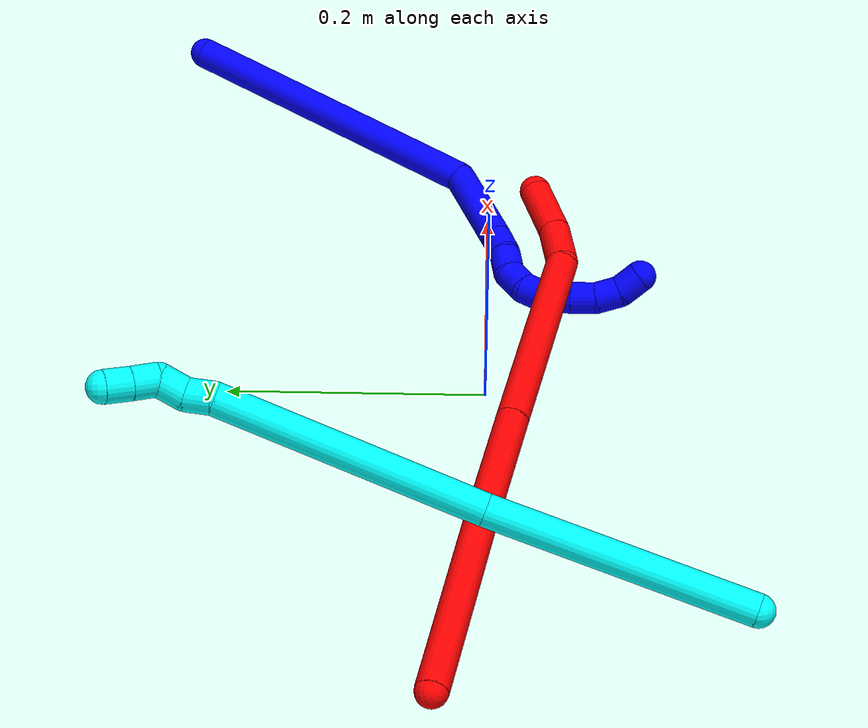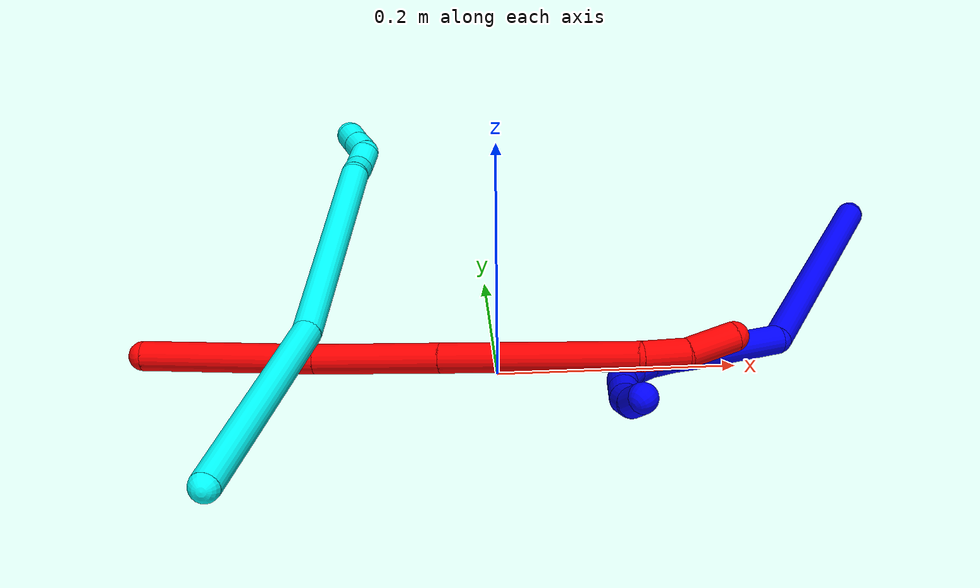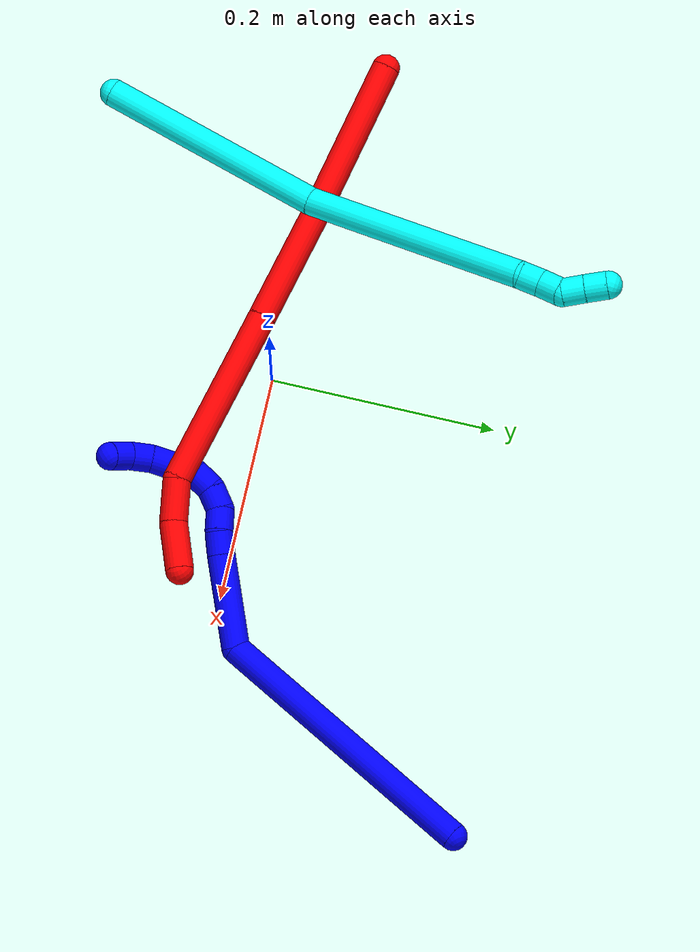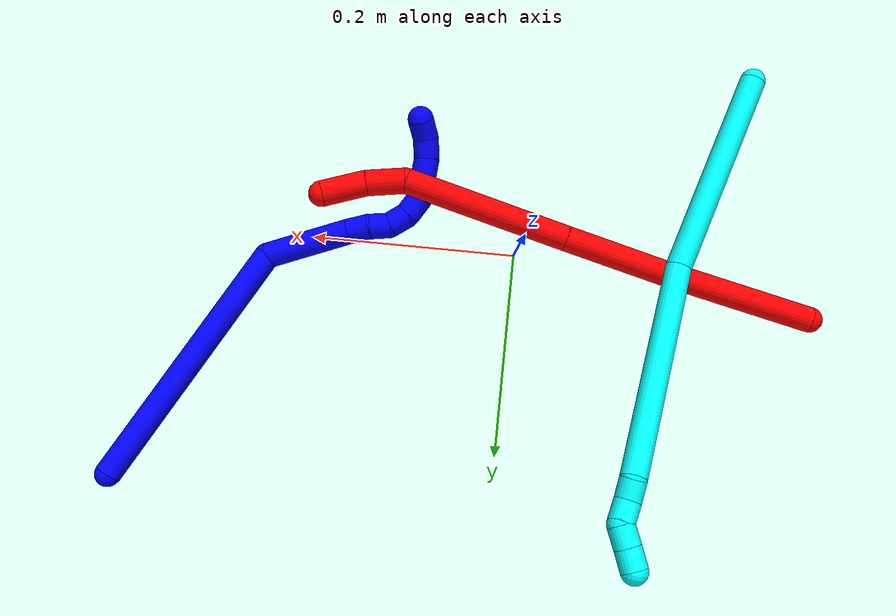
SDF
<sdf version="1.7">
 <world name="default">
  <plugin name="TubeGeneratorPlugin" filename="libtube_generator_plugin.so"/>
  <model name="photoneo_s_sensor">
   <static>1</static>
   <pose>0 0 2 1.57079 1.57079 3.14159</pose>
   <link name="link">
    <inertial><mass>0.1</mass></inertial>
    <sensor name="sensor" type="depth">
     <update_rate>30</update_rate>
     <camera>
      <horizontal_fov>1.22</horizontal_fov>
      <image><width>1920</width><height>1200</height><format>B8G8R8</format></image>
      <clip><near>0.1</near><far>4</far></clip>
      <depth_camera><output>points</output></depth_camera>
     </camera>
     <plugin name="camera_plugin" filename="libgazebo_ros_depth_camera.so">
      <baseline>0.2</baseline>
      <alwaysOn>1</alwaysOn>
      <updateRate>0.0</updateRate>
      <cameraName>camera_ir</cameraName>
      <imageTopicName>/camera/color/image_raw</imageTopicName>
      <cameraInfoTopicName>/camera/color/camera_info</cameraInfoTopicName>
      <depthImageTopicName>/camera/depth/image_raw</depthImageTopicName>
      <depthImageCameraInfoTopicName>/camera/depth/camera_info</depthImageCameraInfoTopicName>
      <pointCloudTopicName>/camera/depth/points</pointCloudTopicName>
      <frameName>fr_optical</frameName>
      <pointCloudCutoff>0.1</pointCloudCutoff>
      <pointCloudCutoffMax>2.0</pointCloudCutoffMax>
      <distortionK1>0</distortionK1>
      <distortionK2>0</distortionK2>
      <distortionK3>0</distortionK3>
      <distortionT1>0</distortionT1>
      <distortionT2>0</distortionT2>
      <CxPrime>0</CxPrime>
      <Cx>0</Cx>
      <Cy>0</Cy>
      <focalLength>0</focalLength>
      <hackBaseline>0</hackBaseline>
     </plugin>
    </sensor>
   </link>
  </model>
  <gravity>0 0 -9.8</gravity>
  <magnetic_field>6e-06 2.3e-05 -4.2e-05</magnetic_field>
  <atmosphere type="adiabatic"/>
  <physics name="default_physics" default="0" type="ode">
   <max_step_size>0.003</max_step_size>
   <real_time_factor>1</real_time_factor>
   <real_time_update_rate>1000</real_time_update_rate>
   <max_contacts>10000</max_contacts>
   <ode>
    <solver>
     <type>quick</type>
     <iters>100</iters>
     <sor>1.3</sor>
     <use_dynamic_moi_rescaling>0</use_dynamic_moi_rescaling>
    </solver>
    <constraints>
     <contact_max_correcting_vel>0</contact_max_correcting_vel>
     <contact_surface_layer>0.001</contact_surface_layer>
     <cfm>0</cfm>
     <erp>0.2</erp>
    </constraints>
   </ode>
  </physics>
  <scene><ambient>0.4 0.4 0.4 1</ambient><background>0.7 0.7 0.7 1</background><shadows>0</shadows></scene>
  <audio><device>default</device></audio>
  <spherical_coordinates>
   <surface_model>EARTH_WGS84</surface_model>
   <latitude_deg>0</latitude_deg>
   <longitude_deg>0</longitude_deg>
   <elevation>0</elevation>
   <heading_deg>0</heading_deg>
  </spherical_coordinates>
  <model name="bin">
   <static>1</static>
   <link name="bottom">
    <collision name="collision-bottom">
     <pose>0 0 -0.01 0 -0 0</pose>
     <geometry><box><size>0.8 0.6 0.02</size></box></geometry>
     <surface>
      <friction><ode><mu>100</mu><mu2>100</mu2></ode></friction>
      <contact><collide_bitmask>65535</collide_bitmask></contact>
     </surface>
    </collision>
   </link>
   <link name="west_wall">
    <collision name="collision-west_wall">
     <pose>-0.41 0 0.1 0 -0 0</pose>
     <geometry><box><size>0.02 0.6 0.2</size></box></geometry>
     <surface>
      <friction><ode><mu>100</mu><mu2>100</mu2></ode></friction>
      <contact><collide_bitmask>65535</collide_bitmask></contact>
     </surface>
    </collision>
   </link>
   <link name="east_wall">
    <collision name="collision-east_wall">
     <pose>0.41 0 0.1 0 -0 0</pose>
     <geometry><box><size>0.02 0.6 0.2</size></box></geometry>
     <surface>
      <friction><ode><mu>100</mu><mu2>100</mu2></ode></friction>
      <contact><collide_bitmask>65535</collide_bitmask></contact>
     </surface>
    </collision>
   </link>
   <link name="south_wall">
    <collision name="collision-south_wall">
     <pose>0 -0.31 0.1 0 -0 0</pose>
     <geometry><box><size>0.8 0.02 0.2</size></box></geometry>
     <surface>
      <friction><ode><mu>100</mu><mu2>100</mu2></ode></friction>
      <contact><collide_bitmask>65535</collide_bitmask></contact>
     </surface>
    </collision>
   </link>
   <link name="north_wall">
    <collision name="collision-north_wall">
     <pose>0 0.31 0.1 0 -0 0</pose>
     <geometry><box><size>0.8 0.02 0.2</size></box></geometry>
     <surface>
      <friction><ode><mu>100</mu><mu2>100</mu2></ode></friction>
      <contact><collide_bitmask>65535</collide_bitmask></contact>
     </surface>
    </collision>
   </link>
  </model>
  <model name="1">
   <static>0</static>
   <link name="1">
    <collision name="collision-cylinder-e_1_1_4">
     <pose>0.010306 -0.044411 -0.119067 2.78458 0.080923 0.441445</pose>
     <geometry><cylinder><radius>0.0125</radius><length>0.254993</length></cylinder></geometry>
     <surface>
      <friction><ode><mu>1.16</mu><mu2>1.16</mu2><slip1>0</slip1><slip2>0</slip2></ode></friction>
      <contact><ode><kp>1e+06</kp><kd>1</kd><max_vel>0</max_vel><min_depth>0.001</min_depth></ode></contact>
     </surface>
    </collision>
    <visual name="visual-cylinder-e_1_1_4">
     <pose>0.010306 -0.044411 -0.119067 2.78458 0.080923 0.441445</pose>
     <geometry><cylinder><radius>0.0125</radius><length>0.254993</length></cylinder></geometry>
     <material><ambient>0 0 1 1</ambient></material>
    </visual>
    <collision name="collision-cylinder-e_2_4_5">
     <pose>0.003591 -0.083265 -0.275561 -2.99419 -0.422722 2.47874</pose>
     <geometry><cylinder><radius>0.0125</radius><length>0.08298</length></cylinder></geometry>
     <surface>
      <friction><ode><mu>1.16</mu><mu2>1.16</mu2><slip1>0</slip1><slip2>0</slip2></ode></friction>
      <contact><ode><kp>1e+06</kp><kd>1</kd><max_vel>0</max_vel><min_depth>0.001</min_depth></ode></contact>
     </surface>
    </collision>
    <visual name="visual-cylinder-e_2_4_5">
     <pose>0.003591 -0.083265 -0.275561 -2.99419 -0.422722 2.47874</pose>
     <geometry><cylinder><radius>0.0125</radius><length>0.08298</length></cylinder></geometry>
     <material><ambient>0 0 1 1</ambient></material>
    </visual>
    <collision name="collision-cylinder-e_3_5_6">
     <pose>-0.018146 -0.075979 -0.322222 -2.95655 -0.465268 2.39504</pose>
     <geometry><cylinder><radius>0.0125</radius><length>0.021023</length></cylinder></geometry>
     <surface>
      <friction><ode><mu>1.16</mu><mu2>1.16</mu2><slip1>0</slip1><slip2>0</slip2></ode></friction>
      <contact><ode><kp>1e+06</kp><kd>1</kd><max_vel>0</max_vel><min_depth>0.001</min_depth></ode></contact>
     </surface>
    </collision>
    <visual name="visual-cylinder-e_3_5_6">
     <pose>-0.018146 -0.075979 -0.322222 -2.95655 -0.465268 2.39504</pose>
     <geometry><cylinder><radius>0.0125</radius><length>0.021023</length></cylinder></geometry>
     <material><ambient>0 0 1 1</ambient></material>
    </visual>
    <collision name="collision-cylinder-e_4_6_7">
     <pose>-0.026519 -0.070325 -0.340065 -2.71381 -0.368827 1.41912</pose>
     <geometry><cylinder><radius>0.0125</radius><length>0.020288</length></cylinder></geometry>
     <surface>
      <friction><ode><mu>1.16</mu><mu2>1.16</mu2><slip1>0</slip1><slip2>0</slip2></ode></friction>
      <contact><ode><kp>1e+06</kp><kd>1</kd><max_vel>0</max_vel><min_depth>0.001</min_depth></ode></contact>
     </surface>
    </collision>
    <visual name="visual-cylinder-e_4_6_7">
     <pose>-0.026519 -0.070325 -0.340065 -2.71381 -0.368827 1.41912</pose>
     <geometry><cylinder><radius>0.0125</radius><length>0.020288</length></cylinder></geometry>
     <material><ambient>0 0 1 1</ambient></material>
    </visual>
    <collision name="collision-cylinder-e_5_7_8">
     <pose>-0.032666 -0.066892 -0.358641 3.09225 -0.244465 -2.74515</pose>
     <geometry><cylinder><radius>0.0125</radius><length>0.020568</length></cylinder></geometry>
     <surface>
      <friction><ode><mu>1.16</mu><mu2>1.16</mu2><slip1>0</slip1><slip2>0</slip2></ode></friction>
      <contact><ode><kp>1e+06</kp><kd>1</kd><max_vel>0</max_vel><min_depth>0.001</min_depth></ode></contact>
     </surface>
    </collision>
    <visual name="visual-cylinder-e_5_7_8">
     <pose>-0.032666 -0.066892 -0.358641 3.09225 -0.244465 -2.74515</pose>
     <geometry><cylinder><radius>0.0125</radius><length>0.020568</length></cylinder></geometry>
     <material><ambient>0 0 1 1</ambient></material>
    </visual>
    <collision name="collision-cylinder-e_6_8_9">
     <pose>-0.035687 -0.071207 -0.377877 2.75044 -0.053059 -0.266306</pose>
     <geometry><cylinder><radius>0.0125</radius><length>0.020083</length></cylinder></geometry>
     <surface>
      <friction><ode><mu>1.16</mu><mu2>1.16</mu2><slip1>0</slip1><slip2>0</slip2></ode></friction>
      <contact><ode><kp>1e+06</kp><kd>1</kd><max_vel>0</max_vel><min_depth>0.001</min_depth></ode></contact>
     </surface>
    </collision>
    <visual name="visual-cylinder-e_6_8_9">
     <pose>-0.035687 -0.071207 -0.377877 2.75044 -0.053059 -0.266306</pose>
     <geometry><cylinder><radius>0.0125</radius><length>0.020083</length></cylinder></geometry>
     <material><ambient>0 0 1 1</ambient></material>
    </visual>
    <collision name="collision-cylinder-e_7_9_10">
     <pose>-0.034672 -0.082276 -0.393898 2.32088 0.155065 0.353417</pose>
     <geometry><cylinder><radius>0.0125</radius><length>0.020049</length></cylinder></geometry>
     <surface>
      <friction><ode><mu>1.16</mu><mu2>1.16</mu2><slip1>0</slip1><slip2>0</slip2></ode></friction>
      <contact><ode><kp>1e+06</kp><kd>1</kd><max_vel>0</max_vel><min_depth>0.001</min_depth></ode></contact>
     </surface>
    </collision>
    <visual name="visual-cylinder-e_7_9_10">
     <pose>-0.034672 -0.082276 -0.393898 2.32088 0.155065 0.353417</pose>
     <geometry><cylinder><radius>0.0125</radius><length>0.020049</length></cylinder></geometry>
     <material><ambient>0 0 1 1</ambient></material>
    </visual>
    <collision name="collision-cylinder-e_8_10_11">
     <pose>-0.031592 -0.096741 -0.407401 2.32272 0.153754 0.351342</pose>
     <geometry><cylinder><radius>0.0125</radius><length>0.020002</length></cylinder></geometry>
     <surface>
      <friction><ode><mu>1.16</mu><mu2>1.16</mu2><slip1>0</slip1><slip2>0</slip2></ode></friction>
      <contact><ode><kp>1e+06</kp><kd>1</kd><max_vel>0</max_vel><min_depth>0.001</min_depth></ode></contact>
     </surface>
    </collision>
    <visual name="visual-cylinder-e_8_10_11">
     <pose>-0.031592 -0.096741 -0.407401 2.32272 0.153754 0.351342</pose>
     <geometry><cylinder><radius>0.0125</radius><length>0.020002</length></cylinder></geometry>
     <material><ambient>0 0 1 1</ambient></material>
    </visual>
    <collision name="collision-cylinder-e_9_11_12">
     <pose>-0.028955 -0.112843 -0.418621 2.03699 0.110665 0.179273</pose>
     <geometry><cylinder><radius>0.0125</radius><length>0.020012</length></cylinder></geometry>
     <surface>
      <friction><ode><mu>1.16</mu><mu2>1.16</mu2><slip1>0</slip1><slip2>0</slip2></ode></friction>
      <contact><ode><kp>1e+06</kp><kd>1</kd><max_vel>0</max_vel><min_depth>0.001</min_depth></ode></contact>
     </surface>
    </collision>
    <visual name="visual-cylinder-e_9_11_12">
     <pose>-0.028955 -0.112843 -0.418621 2.03699 0.110665 0.179273</pose>
     <geometry><cylinder><radius>0.0125</radius><length>0.020012</length></cylinder></geometry>
     <material><ambient>0 0 1 1</ambient></material>
    </visual>
    <collision name="collision-cylinder-e_10_12_2">
     <pose>-0.028796 -0.131594 -0.424412 1.7038 -0.094729 -0.108223</pose>
     <geometry><cylinder><radius>0.0125</radius><length>0.020001</length></cylinder></geometry>
     <surface>
      <friction><ode><mu>1.16</mu><mu2>1.16</mu2><slip1>0</slip1><slip2>0</slip2></ode></friction>
      <contact><ode><kp>1e+06</kp><kd>1</kd><max_vel>0</max_vel><min_depth>0.001</min_depth></ode></contact>
     </surface>
    </collision>
    <visual name="visual-cylinder-e_10_12_2">
     <pose>-0.028796 -0.131594 -0.424412 1.7038 -0.094729 -0.108223</pose>
     <geometry><cylinder><radius>0.0125</radius><length>0.020001</length></cylinder></geometry>
     <material><ambient>0 0 1 1</ambient></material>
    </visual>
    <collision name="collision-sphere-2">
     <pose>-0.029742 -0.141462 -0.425732 0 -0 0</pose>
     <geometry><sphere><radius>0.0125</radius></sphere></geometry>
     <surface>
      <friction><ode><mu>1.16</mu><mu2>1.16</mu2><slip1>0</slip1><slip2>0</slip2></ode></friction>
      <contact><ode><kp>1e+06</kp><kd>1</kd><max_vel>0</max_vel><min_depth>0.001</min_depth></ode></contact>
     </surface>
    </collision>
    <visual name="visual-sphere-2">
     <pose>-0.029742 -0.141462 -0.425732 0 -0 0</pose>
     <geometry><sphere><radius>0.0125</radius></sphere></geometry>
     <material><ambient>0 0 1 1</ambient></material>
    </visual>
    <collision name="collision-sphere-12">
     <pose>-0.02785 -0.121727 -0.423092 0 -0 0</pose>
     <geometry><sphere><radius>0.0125</radius></sphere></geometry>
     <surface>
      <friction><ode><mu>1.16</mu><mu2>1.16</mu2><slip1>0</slip1><slip2>0</slip2></ode></friction>
      <contact><ode><kp>1e+06</kp><kd>1</kd><max_vel>0</max_vel><min_depth>0.001</min_depth></ode></contact>
     </surface>
    </collision>
    <visual name="visual-sphere-12">
     <pose>-0.02785 -0.121727 -0.423092 0 -0 0</pose>
     <geometry><sphere><radius>0.0125</radius></sphere></geometry>
     <material><ambient>0 0 1 1</ambient></material>
    </visual>
    <collision name="collision-sphere-11">
     <pose>-0.03006 -0.10396 -0.414151 0 -0 0</pose>
     <geometry><sphere><radius>0.0125</radius></sphere></geometry>
     <surface>
      <friction><ode><mu>1.16</mu><mu2>1.16</mu2><slip1>0</slip1><slip2>0</slip2></ode></friction>
      <contact><ode><kp>1e+06</kp><kd>1</kd><max_vel>0</max_vel><min_depth>0.001</min_depth></ode></contact>
     </surface>
    </collision>
    <visual name="visual-sphere-11">
     <pose>-0.03006 -0.10396 -0.414151 0 -0 0</pose>
     <geometry><sphere><radius>0.0125</radius></sphere></geometry>
     <material><ambient>0 0 1 1</ambient></material>
    </visual>
    <collision name="collision-sphere-10">
     <pose>-0.033123 -0.089523 -0.40065 0 -0 0</pose>
     <geometry><sphere><radius>0.0125</radius></sphere></geometry>
     <surface>
      <friction><ode><mu>1.16</mu><mu2>1.16</mu2><slip1>0</slip1><slip2>0</slip2></ode></friction>
      <contact><ode><kp>1e+06</kp><kd>1</kd><max_vel>0</max_vel><min_depth>0.001</min_depth></ode></contact>
     </surface>
    </collision>
    <visual name="visual-sphere-10">
     <pose>-0.033123 -0.089523 -0.40065 0 -0 0</pose>
     <geometry><sphere><radius>0.0125</radius></sphere></geometry>
     <material><ambient>0 0 1 1</ambient></material>
    </visual>
    <collision name="collision-sphere-9">
     <pose>-0.03622 -0.07503 -0.387147 0 -0 0</pose>
     <geometry><sphere><radius>0.0125</radius></sphere></geometry>
     <surface>
      <friction><ode><mu>1.16</mu><mu2>1.16</mu2><slip1>0</slip1><slip2>0</slip2></ode></friction>
      <contact><ode><kp>1e+06</kp><kd>1</kd><max_vel>0</max_vel><min_depth>0.001</min_depth></ode></contact>
     </surface>
    </collision>
    <visual name="visual-sphere-9">
     <pose>-0.03622 -0.07503 -0.387147 0 -0 0</pose>
     <geometry><sphere><radius>0.0125</radius></sphere></geometry>
     <material><ambient>0 0 1 1</ambient></material>
    </visual>
    <collision name="collision-sphere-4">
     <pose>0.020612 -0.088822 -0.238133 0 -0 0</pose>
     <geometry><sphere><radius>0.0125</radius></sphere></geometry>
     <surface>
      <friction><ode><mu>1.16</mu><mu2>1.16</mu2><slip1>0</slip1><slip2>0</slip2></ode></friction>
      <contact><ode><kp>1e+06</kp><kd>1</kd><max_vel>0</max_vel><min_depth>0.001</min_depth></ode></contact>
     </surface>
    </collision>
    <visual name="visual-sphere-4">
     <pose>0.020612 -0.088822 -0.238133 0 -0 0</pose>
     <geometry><sphere><radius>0.0125</radius></sphere></geometry>
     <material><ambient>0 0 1 1</ambient></material>
    </visual>
    <collision name="collision-sphere-1">
     <geometry><sphere><radius>0.0125</radius></sphere></geometry>
     <surface>
      <friction><ode><mu>1.16</mu><mu2>1.16</mu2><slip1>0</slip1><slip2>0</slip2></ode></friction>
      <contact><ode><kp>1e+06</kp><kd>1</kd><max_vel>0</max_vel><min_depth>0.001</min_depth></ode></contact>
     </surface>
    </collision>
    <visual name="visual-sphere-1">
     <geometry><sphere><radius>0.0125</radius></sphere></geometry>
     <material><ambient>0 0 1 1</ambient></material>
    </visual>
    <collision name="collision-sphere-8">
     <pose>-0.035155 -0.067384 -0.368607 0 -0 0</pose>
     <geometry><sphere><radius>0.0125</radius></sphere></geometry>
     <surface>
      <friction><ode><mu>1.16</mu><mu2>1.16</mu2><slip1>0</slip1><slip2>0</slip2></ode></friction>
      <contact><ode><kp>1e+06</kp><kd>1</kd><max_vel>0</max_vel><min_depth>0.001</min_depth></ode></contact>
     </surface>
    </collision>
    <visual name="visual-sphere-8">
     <pose>-0.035155 -0.067384 -0.368607 0 -0 0</pose>
     <geometry><sphere><radius>0.0125</radius></sphere></geometry>
     <material><ambient>0 0 1 1</ambient></material>
    </visual>
    <collision name="collision-sphere-5">
     <pose>-0.01343 -0.077708 -0.312988 0 -0 0</pose>
     <geometry><sphere><radius>0.0125</radius></sphere></geometry>
     <surface>
      <friction><ode><mu>1.16</mu><mu2>1.16</mu2><slip1>0</slip1><slip2>0</slip2></ode></friction>
      <contact><ode><kp>1e+06</kp><kd>1</kd><max_vel>0</max_vel><min_depth>0.001</min_depth></ode></contact>
     </surface>
    </collision>
    <visual name="visual-sphere-5">
     <pose>-0.01343 -0.077708 -0.312988 0 -0 0</pose>
     <geometry><sphere><radius>0.0125</radius></sphere></geometry>
     <material><ambient>0 0 1 1</ambient></material>
    </visual>
    <collision name="collision-sphere-6">
     <pose>-0.022862 -0.074251 -0.331456 0 -0 0</pose>
     <geometry><sphere><radius>0.0125</radius></sphere></geometry>
     <surface>
      <friction><ode><mu>1.16</mu><mu2>1.16</mu2><slip1>0</slip1><slip2>0</slip2></ode></friction>
      <contact><ode><kp>1e+06</kp><kd>1</kd><max_vel>0</max_vel><min_depth>0.001</min_depth></ode></contact>
     </surface>
    </collision>
    <visual name="visual-sphere-6">
     <pose>-0.022862 -0.074251 -0.331456 0 -0 0</pose>
     <geometry><sphere><radius>0.0125</radius></sphere></geometry>
     <material><ambient>0 0 1 1</ambient></material>
    </visual>
    <collision name="collision-sphere-7">
     <pose>-0.030176 -0.0664 -0.348675 0 -0 0</pose>
     <geometry><sphere><radius>0.0125</radius></sphere></geometry>
     <surface>
      <friction><ode><mu>1.16</mu><mu2>1.16</mu2><slip1>0</slip1><slip2>0</slip2></ode></friction>
      <contact><ode><kp>1e+06</kp><kd>1</kd><max_vel>0</max_vel><min_depth>0.001</min_depth></ode></contact>
     </surface>
    </collision>
    <visual name="visual-sphere-7">
     <pose>-0.030176 -0.0664 -0.348675 0 -0 0</pose>
     <geometry><sphere><radius>0.0125</radius></sphere></geometry>
     <material><ambient>0 0 1 1</ambient></material>
    </visual>
    <inertial>
     <pose>-0.003729 -0.065077 -0.229557 0 -0 0</pose>
     <mass>0.5</mass>
     <inertia>
      <ixx>0.001844</ixx>
      <ixy>0</ixy>
      <ixz>0</ixz>
      <iyy>-0.000509</iyy>
      <iyz>0</iyz>
      <izz>0.000359</izz>
     </inertia>
    </inertial>
   </link>
   <pose>0.363314 0.245429 0.043662 -1.114 0.945534 -0.468103</pose>
  </model>
  <model name="2">
   <static>0</static>
   <link name="2">
    <collision name="collision-cylinder-e_1_1_4">
     <pose>0.058648 -0.03575 -0.026803 2.21413 0.91975 1.56113</pose>
     <geometry><cylinder><radius>0.0125</radius><length>0.147458</length></cylinder></geometry>
     <surface>
      <friction><ode><mu>1.16</mu><mu2>1.16</mu2><slip1>0</slip1><slip2>0</slip2></ode></friction>
      <contact><ode><kp>1e+06</kp><kd>1</kd><max_vel>0</max_vel><min_depth>0.001</min_depth></ode></contact>
     </surface>
    </collision>
    <visual name="visual-cylinder-e_1_1_4">
     <pose>0.058648 -0.03575 -0.026803 2.21413 0.91975 1.56113</pose>
     <geometry><cylinder><radius>0.0125</radius><length>0.147458</length></cylinder></geometry>
     <material><ambient>1 0 0 1</ambient></material>
    </visual>
    <collision name="collision-cylinder-e_2_4_5">
     <pose>0.160366 -0.09716 -0.070511 2.15335 0.951087 1.52575</pose>
     <geometry><cylinder><radius>0.0125</radius><length>0.105817</length></cylinder></geometry>
     <surface>
      <friction><ode><mu>1.16</mu><mu2>1.16</mu2><slip1>0</slip1><slip2>0</slip2></ode></friction>
      <contact><ode><kp>1e+06</kp><kd>1</kd><max_vel>0</max_vel><min_depth>0.001</min_depth></ode></contact>
     </surface>
    </collision>
    <visual name="visual-cylinder-e_2_4_5">
     <pose>0.160366 -0.09716 -0.070511 2.15335 0.951087 1.52575</pose>
     <geometry><cylinder><radius>0.0125</radius><length>0.105817</length></cylinder></geometry>
     <material><ambient>1 0 0 1</ambient></material>
    </visual>
    <collision name="collision-cylinder-e_3_5_6">
     <pose>0.270159 -0.163003 -0.113341 2.14375 0.948964 1.5117</pose>
     <geometry><cylinder><radius>0.0125</radius><length>0.164179</length></cylinder></geometry>
     <surface>
      <friction><ode><mu>1.16</mu><mu2>1.16</mu2><slip1>0</slip1><slip2>0</slip2></ode></friction>
      <contact><ode><kp>1e+06</kp><kd>1</kd><max_vel>0</max_vel><min_depth>0.001</min_depth></ode></contact>
     </surface>
    </collision>
    <visual name="visual-cylinder-e_3_5_6">
     <pose>0.270159 -0.163003 -0.113341 2.14375 0.948964 1.5117</pose>
     <geometry><cylinder><radius>0.0125</radius><length>0.164179</length></cylinder></geometry>
     <material><ambient>1 0 0 1</ambient></material>
    </visual>
    <collision name="collision-cylinder-e_4_6_7">
     <pose>0.351775 -0.207193 -0.150828 2.80803 0.88289 2.45712</pose>
     <geometry><cylinder><radius>0.0125</radius><length>0.038551</length></cylinder></geometry>
     <surface>
      <friction><ode><mu>1.16</mu><mu2>1.16</mu2><slip1>0</slip1><slip2>0</slip2></ode></friction>
      <contact><ode><kp>1e+06</kp><kd>1</kd><max_vel>0</max_vel><min_depth>0.001</min_depth></ode></contact>
     </surface>
    </collision>
    <visual name="visual-cylinder-e_4_6_7">
     <pose>0.351775 -0.207193 -0.150828 2.80803 0.88289 2.45712</pose>
     <geometry><cylinder><radius>0.0125</radius><length>0.038551</length></cylinder></geometry>
     <material><ambient>1 0 0 1</ambient></material>
    </visual>
    <collision name="collision-cylinder-e_5_7_2">
     <pose>0.38503 -0.210074 -0.17445 -3.04841 0.987787 -2.96883</pose>
     <geometry><cylinder><radius>0.0125</radius><length>0.043994</length></cylinder></geometry>
     <surface>
      <friction><ode><mu>1.16</mu><mu2>1.16</mu2><slip1>0</slip1><slip2>0</slip2></ode></friction>
      <contact><ode><kp>1e+06</kp><kd>1</kd><max_vel>0</max_vel><min_depth>0.001</min_depth></ode></contact>
     </surface>
    </collision>
    <visual name="visual-cylinder-e_5_7_2">
     <pose>0.38503 -0.210074 -0.17445 -3.04841 0.987787 -2.96883</pose>
     <geometry><cylinder><radius>0.0125</radius><length>0.043994</length></cylinder></geometry>
     <material><ambient>1 0 0 1</ambient></material>
    </visual>
    <collision name="collision-sphere-2">
     <pose>0.403393 -0.208947 -0.186508 0 -0 0</pose>
     <geometry><sphere><radius>0.0125</radius></sphere></geometry>
     <surface>
      <friction><ode><mu>1.16</mu><mu2>1.16</mu2><slip1>0</slip1><slip2>0</slip2></ode></friction>
      <contact><ode><kp>1e+06</kp><kd>1</kd><max_vel>0</max_vel><min_depth>0.001</min_depth></ode></contact>
     </surface>
    </collision>
    <visual name="visual-sphere-2">
     <pose>0.403393 -0.208947 -0.186508 0 -0 0</pose>
     <geometry><sphere><radius>0.0125</radius></sphere></geometry>
     <material><ambient>1 0 0 1</ambient></material>
    </visual>
    <collision name="collision-sphere-7">
     <pose>0.366667 -0.2112 -0.162392 0 -0 0</pose>
     <geometry><sphere><radius>0.0125</radius></sphere></geometry>
     <surface>
      <friction><ode><mu>1.16</mu><mu2>1.16</mu2><slip1>0</slip1><slip2>0</slip2></ode></friction>
      <contact><ode><kp>1e+06</kp><kd>1</kd><max_vel>0</max_vel><min_depth>0.001</min_depth></ode></contact>
     </surface>
    </collision>
    <visual name="visual-sphere-7">
     <pose>0.366667 -0.2112 -0.162392 0 -0 0</pose>
     <geometry><sphere><radius>0.0125</radius></sphere></geometry>
     <material><ambient>1 0 0 1</ambient></material>
    </visual>
    <collision name="collision-sphere-6">
     <pose>0.336883 -0.203186 -0.139264 0 -0 0</pose>
     <geometry><sphere><radius>0.0125</radius></sphere></geometry>
     <surface>
      <friction><ode><mu>1.16</mu><mu2>1.16</mu2><slip1>0</slip1><slip2>0</slip2></ode></friction>
      <contact><ode><kp>1e+06</kp><kd>1</kd><max_vel>0</max_vel><min_depth>0.001</min_depth></ode></contact>
     </surface>
    </collision>
    <visual name="visual-sphere-6">
     <pose>0.336883 -0.203186 -0.139264 0 -0 0</pose>
     <geometry><sphere><radius>0.0125</radius></sphere></geometry>
     <material><ambient>1 0 0 1</ambient></material>
    </visual>
    <collision name="collision-sphere-5">
     <pose>0.203436 -0.122821 -0.087417 0 -0 0</pose>
     <geometry><sphere><radius>0.0125</radius></sphere></geometry>
     <surface>
      <friction><ode><mu>1.16</mu><mu2>1.16</mu2><slip1>0</slip1><slip2>0</slip2></ode></friction>
      <contact><ode><kp>1e+06</kp><kd>1</kd><max_vel>0</max_vel><min_depth>0.001</min_depth></ode></contact>
     </surface>
    </collision>
    <visual name="visual-sphere-5">
     <pose>0.203436 -0.122821 -0.087417 0 -0 0</pose>
     <geometry><sphere><radius>0.0125</radius></sphere></geometry>
     <material><ambient>1 0 0 1</ambient></material>
    </visual>
    <collision name="collision-sphere-1">
     <geometry><sphere><radius>0.0125</radius></sphere></geometry>
     <surface>
      <friction><ode><mu>1.16</mu><mu2>1.16</mu2><slip1>0</slip1><slip2>0</slip2></ode></friction>
      <contact><ode><kp>1e+06</kp><kd>1</kd><max_vel>0</max_vel><min_depth>0.001</min_depth></ode></contact>
     </surface>
    </collision>
    <visual name="visual-sphere-1">
     <geometry><sphere><radius>0.0125</radius></sphere></geometry>
     <material><ambient>1 0 0 1</ambient></material>
    </visual>
    <collision name="collision-sphere-4">
     <pose>0.117296 -0.071499 -0.053605 0 -0 0</pose>
     <geometry><sphere><radius>0.0125</radius></sphere></geometry>
     <surface>
      <friction><ode><mu>1.16</mu><mu2>1.16</mu2><slip1>0</slip1><slip2>0</slip2></ode></friction>
      <contact><ode><kp>1e+06</kp><kd>1</kd><max_vel>0</max_vel><min_depth>0.001</min_depth></ode></contact>
     </surface>
    </collision>
    <visual name="visual-sphere-4">
     <pose>0.117296 -0.071499 -0.053605 0 -0 0</pose>
     <geometry><sphere><radius>0.0125</radius></sphere></geometry>
     <material><ambient>1 0 0 1</ambient></material>
    </visual>
    <inertial>
     <pose>0.200945 -0.119088 -0.087022 0 -0 0</pose>
     <mass>0.5</mass>
     <inertia>
      <ixx>0.000486</ixx>
      <ixy>0</ixy>
      <ixz>0</ixz>
      <iyy>0.000926</iyy>
      <iyz>0</iyz>
      <izz>-0.000266</izz>
     </inertia>
    </inertial>
   </link>
   <pose>-0.294717 0.03508 0.011769 0.522241 -0.649005 0.030809</pose>
  </model>
  <model name="3">
   <static>0</static>
   <link name="3">
    <collision name="collision-cylinder-e_1_1_4">
     <pose>-0.002392 0.036481 0.096617 -0.361029 -0.023162 0.004227</pose>
     <geometry><cylinder><radius>0.0125</radius><length>0.206606</length></cylinder></geometry>
     <surface>
      <friction><ode><mu>1.16</mu><mu2>1.16</mu2><slip1>0</slip1><slip2>0</slip2></ode></friction>
      <contact><ode><kp>1e+06</kp><kd>1</kd><max_vel>0</max_vel><min_depth>0.001</min_depth></ode></contact>
     </surface>
    </collision>
    <visual name="visual-cylinder-e_1_1_4">
     <pose>-0.002392 0.036481 0.096617 -0.361029 -0.023162 0.004227</pose>
     <geometry><cylinder><radius>0.0125</radius><length>0.206606</length></cylinder></geometry>
     <material><ambient>0.003922 1 0.996078 1</ambient></material>
    </visual>
    <collision name="collision-cylinder-e_2_4_5">
     <pose>0.014463 0.119135 0.285778 -0.462804 0.184001 -0.043471</pose>
     <geometry><cylinder><radius>0.0125</radius><length>0.210397</length></cylinder></geometry>
     <surface>
      <friction><ode><mu>1.16</mu><mu2>1.16</mu2><slip1>0</slip1><slip2>0</slip2></ode></friction>
      <contact><ode><kp>1e+06</kp><kd>1</kd><max_vel>0</max_vel><min_depth>0.001</min_depth></ode></contact>
     </surface>
    </collision>
    <visual name="visual-cylinder-e_2_4_5">
     <pose>0.014463 0.119135 0.285778 -0.462804 0.184001 -0.043471</pose>
     <geometry><cylinder><radius>0.0125</radius><length>0.210397</length></cylinder></geometry>
     <material><ambient>0.003922 1 0.996078 1</ambient></material>
    </visual>
    <collision name="collision-cylinder-e_3_5_6">
     <pose>0.033871 0.166855 0.388461 -0.151294 0.01562 -0.001184</pose>
     <geometry><cylinder><radius>0.0125</radius><length>0.020517</length></cylinder></geometry>
     <surface>
      <friction><ode><mu>1.16</mu><mu2>1.16</mu2><slip1>0</slip1><slip2>0</slip2></ode></friction>
      <contact><ode><kp>1e+06</kp><kd>1</kd><max_vel>0</max_vel><min_depth>0.001</min_depth></ode></contact>
     </surface>
    </collision>
    <visual name="visual-cylinder-e_3_5_6">
     <pose>0.033871 0.166855 0.388461 -0.151294 0.01562 -0.001184</pose>
     <geometry><cylinder><radius>0.0125</radius><length>0.020517</length></cylinder></geometry>
     <material><ambient>0.003922 1 0.996078 1</ambient></material>
    </visual>
    <collision name="collision-cylinder-e_4_6_7">
     <pose>0.0356 0.174343 0.407764 -0.57531 0.142748 -0.042299</pose>
     <geometry><cylinder><radius>0.0125</radius><length>0.022066</length></cylinder></geometry>
     <surface>
      <friction><ode><mu>1.16</mu><mu2>1.16</mu2><slip1>0</slip1><slip2>0</slip2></ode></friction>
      <contact><ode><kp>1e+06</kp><kd>1</kd><max_vel>0</max_vel><min_depth>0.001</min_depth></ode></contact>
     </surface>
    </collision>
    <visual name="visual-cylinder-e_4_6_7">
     <pose>0.0356 0.174343 0.407764 -0.57531 0.142748 -0.042299</pose>
     <geometry><cylinder><radius>0.0125</radius><length>0.022066</length></cylinder></geometry>
     <material><ambient>0.003922 1 0.996078 1</ambient></material>
    </visual>
    <collision name="collision-cylinder-e_5_7_8">
     <pose>0.042458 0.179972 0.425582 0.036124 0.548141 0.010157</pose>
     <geometry><cylinder><radius>0.0125</radius><length>0.020296</length></cylinder></geometry>
     <surface>
      <friction><ode><mu>1.16</mu><mu2>1.16</mu2><slip1>0</slip1><slip2>0</slip2></ode></friction>
      <contact><ode><kp>1e+06</kp><kd>1</kd><max_vel>0</max_vel><min_depth>0.001</min_depth></ode></contact>
     </surface>
    </collision>
    <visual name="visual-cylinder-e_5_7_8">
     <pose>0.042458 0.179972 0.425582 0.036124 0.548141 0.010157</pose>
     <geometry><cylinder><radius>0.0125</radius><length>0.020296</length></cylinder></geometry>
     <material><ambient>0.003922 1 0.996078 1</ambient></material>
    </visual>
    <collision name="collision-cylinder-e_6_8_2">
     <pose>0.052913 0.179686 0.442869 -0.003064 0.539391 -0.000847</pose>
     <geometry><cylinder><radius>0.0125</radius><length>0.020118</length></cylinder></geometry>
     <surface>
      <friction><ode><mu>1.16</mu><mu2>1.16</mu2><slip1>0</slip1><slip2>0</slip2></ode></friction>
      <contact><ode><kp>1e+06</kp><kd>1</kd><max_vel>0</max_vel><min_depth>0.001</min_depth></ode></contact>
     </surface>
    </collision>
    <visual name="visual-cylinder-e_6_8_2">
     <pose>0.052913 0.179686 0.442869 -0.003064 0.539391 -0.000847</pose>
     <geometry><cylinder><radius>0.0125</radius><length>0.020118</length></cylinder></geometry>
     <material><ambient>0.003922 1 0.996078 1</ambient></material>
    </visual>
    <collision name="collision-sphere-2">
     <pose>0.058079 0.179712 0.4515 0 -0 0</pose>
     <geometry><sphere><radius>0.0125</radius></sphere></geometry>
     <surface>
      <friction><ode><mu>1.16</mu><mu2>1.16</mu2><slip1>0</slip1><slip2>0</slip2></ode></friction>
      <contact><ode><kp>1e+06</kp><kd>1</kd><max_vel>0</max_vel><min_depth>0.001</min_depth></ode></contact>
     </surface>
    </collision>
    <visual name="visual-sphere-2">
     <pose>0.058079 0.179712 0.4515 0 -0 0</pose>
     <geometry><sphere><radius>0.0125</radius></sphere></geometry>
     <material><ambient>0.003922 1 0.996078 1</ambient></material>
    </visual>
    <collision name="collision-sphere-4">
     <pose>-0.004785 0.072961 0.193235 0 -0 0</pose>
     <geometry><sphere><radius>0.0125</radius></sphere></geometry>
     <surface>
      <friction><ode><mu>1.16</mu><mu2>1.16</mu2><slip1>0</slip1><slip2>0</slip2></ode></friction>
      <contact><ode><kp>1e+06</kp><kd>1</kd><max_vel>0</max_vel><min_depth>0.001</min_depth></ode></contact>
     </surface>
    </collision>
    <visual name="visual-sphere-4">
     <pose>-0.004785 0.072961 0.193235 0 -0 0</pose>
     <geometry><sphere><radius>0.0125</radius></sphere></geometry>
     <material><ambient>0.003922 1 0.996078 1</ambient></material>
    </visual>
    <collision name="collision-sphere-1">
     <geometry><sphere><radius>0.0125</radius></sphere></geometry>
     <surface>
      <friction><ode><mu>1.16</mu><mu2>1.16</mu2><slip1>0</slip1><slip2>0</slip2></ode></friction>
      <contact><ode><kp>1e+06</kp><kd>1</kd><max_vel>0</max_vel><min_depth>0.001</min_depth></ode></contact>
     </surface>
    </collision>
    <visual name="visual-sphere-1">
     <geometry><sphere><radius>0.0125</radius></sphere></geometry>
     <material><ambient>0.003922 1 0.996078 1</ambient></material>
    </visual>
    <collision name="collision-sphere-8">
     <pose>0.047746 0.179659 0.434238 0 -0 0</pose>
     <geometry><sphere><radius>0.0125</radius></sphere></geometry>
     <surface>
      <friction><ode><mu>1.16</mu><mu2>1.16</mu2><slip1>0</slip1><slip2>0</slip2></ode></friction>
      <contact><ode><kp>1e+06</kp><kd>1</kd><max_vel>0</max_vel><min_depth>0.001</min_depth></ode></contact>
     </surface>
    </collision>
    <visual name="visual-sphere-8">
     <pose>0.047746 0.179659 0.434238 0 -0 0</pose>
     <geometry><sphere><radius>0.0125</radius></sphere></geometry>
     <material><ambient>0.003922 1 0.996078 1</ambient></material>
    </visual>
    <collision name="collision-sphere-5">
     <pose>0.03371 0.165309 0.378321 0 -0 0</pose>
     <geometry><sphere><radius>0.0125</radius></sphere></geometry>
     <surface>
      <friction><ode><mu>1.16</mu><mu2>1.16</mu2><slip1>0</slip1><slip2>0</slip2></ode></friction>
      <contact><ode><kp>1e+06</kp><kd>1</kd><max_vel>0</max_vel><min_depth>0.001</min_depth></ode></contact>
     </surface>
    </collision>
    <visual name="visual-sphere-5">
     <pose>0.03371 0.165309 0.378321 0 -0 0</pose>
     <geometry><sphere><radius>0.0125</radius></sphere></geometry>
     <material><ambient>0.003922 1 0.996078 1</ambient></material>
    </visual>
    <collision name="collision-sphere-6">
     <pose>0.034031 0.168401 0.398601 0 -0 0</pose>
     <geometry><sphere><radius>0.0125</radius></sphere></geometry>
     <surface>
      <friction><ode><mu>1.16</mu><mu2>1.16</mu2><slip1>0</slip1><slip2>0</slip2></ode></friction>
      <contact><ode><kp>1e+06</kp><kd>1</kd><max_vel>0</max_vel><min_depth>0.001</min_depth></ode></contact>
     </surface>
    </collision>
    <visual name="visual-sphere-6">
     <pose>0.034031 0.168401 0.398601 0 -0 0</pose>
     <geometry><sphere><radius>0.0125</radius></sphere></geometry>
     <material><ambient>0.003922 1 0.996078 1</ambient></material>
    </visual>
    <collision name="collision-sphere-7">
     <pose>0.03717 0.180285 0.416927 0 -0 0</pose>
     <geometry><sphere><radius>0.0125</radius></sphere></geometry>
     <surface>
      <friction><ode><mu>1.16</mu><mu2>1.16</mu2><slip1>0</slip1><slip2>0</slip2></ode></friction>
      <contact><ode><kp>1e+06</kp><kd>1</kd><max_vel>0</max_vel><min_depth>0.001</min_depth></ode></contact>
     </surface>
    </collision>
    <visual name="visual-sphere-7">
     <pose>0.03717 0.180285 0.416927 0 -0 0</pose>
     <geometry><sphere><radius>0.0125</radius></sphere></geometry>
     <material><ambient>0.003922 1 0.996078 1</ambient></material>
    </visual>
    <inertial>
     <pose>0.011911 0.094282 0.229207 0 -0 0</pose>
     <mass>0.5</mass>
     <inertia>
      <ixx>0.001493</ixx>
      <ixy>0</ixy>
      <ixz>0</ixz>
      <iyy>0.001389</iyy>
      <iyz>0</iyz>
      <izz>-0.000701</izz>
     </inertia>
    </inertial>
   </link>
   <pose>-0.218959 -0.194566 0.012343 1.73662 -0.57666 2.95442</pose>
  </model>
 </world>
</sdf>
